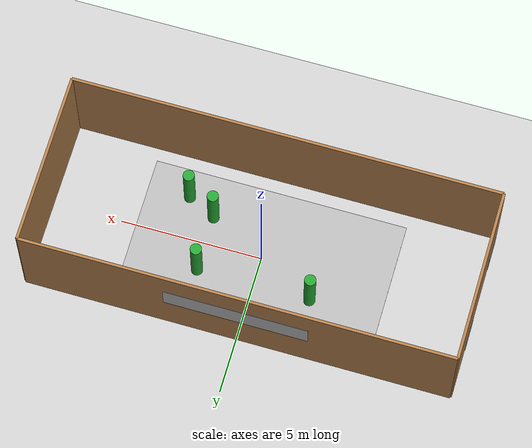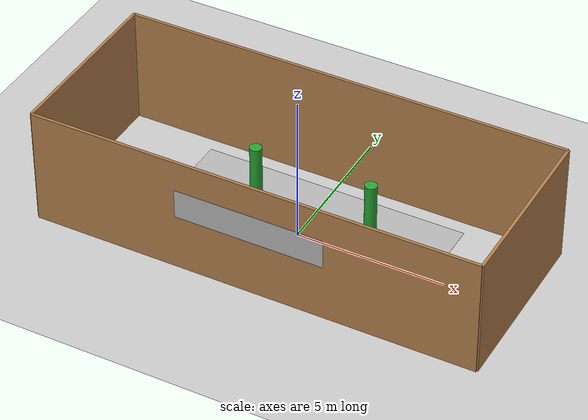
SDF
<?xml version="1.0" ?>
<sdf version="1.5">
  <world name="default">
   <light type="directional" name="sun">
      <cast_shadows>false</cast_shadows>
      <pose>0 0 100 0 0 0</pose>
      <diffuse>0.8 0.8 0.8 1</diffuse>
      <specular>0.9 0.9 0.9 1</specular>
      <attenuation>
        <range>1000</range>
        <constant>0.9</constant>
        <linear>0.01</linear>
        <quadratic>0.001</quadratic>
      </attenuation>
      <direction>0.2 0.2 -0.9</direction>
    </light>

    <!-- A ground plane -->
    <include>
      <uri>model://ground_plane</uri>
    </include>

    <!-- 初始视角 -->
    <gui fullscreen='0'>
      <camera name='user_camera'>
        <pose>-11.0 0.0 7.0 0 0.57 0.0</pose>
        <view_controller>orbit</view_controller>
      </camera>
    </gui>

    <!-- 地面 -->

    <physics type='ode'>
      <gravity>0 0 -9.8066</gravity>
      <ode>
        <solver>
          <type>quick</type>
          <iters>10</iters>
          <sor>1.3</sor>
          <use_dynamic_moi_rescaling>0</use_dynamic_moi_rescaling>
        </solver>
        <constraints>
          <cfm>0.0</cfm>
          <erp>0.2</erp>
          <contact_max_correcting_vel>100</contact_max_correcting_vel>
          <contact_surface_layer>0.001</contact_surface_layer>
        </constraints>
      </ode>
      <max_step_size>0.004</max_step_size>
      <real_time_factor>1.0</real_time_factor>
      <real_time_update_rate>250</real_time_update_rate>
      <magnetic_field>6.0e-6 2.3e-5 -4.2e-5</magnetic_field>
    </physics>

    <!-- 房间四周墙体 -->
    <!-- 房间大小粗略估计为 15米*6米*6米，但高度只取到4米（为了方便显示） -->
    <!-- 取VICON区域中心点为原点，大致的可探测区域为 [-4.5,4.5]米*[-2.5,2.5]米*[0,3.5]米 -->
    <model name='room_wall'>
      <static>true</static>
      <!-- 前墙 -->
      <link name="wall_front">
          <pose frame=''>7.5 0 2 0 -0 1.57</pose>
          <inertial>
            <mass>2.0</mass>
          </inertial>
          <collision name="collision">
            <geometry>
              <box>
                <size>6 0.1 4</size>
              </box>
            </geometry>
          </collision>
          <visual name="visual">
            <geometry>
              <box>
                <size>6 0.1 4</size>
              </box>
            </geometry>
            <material>
              <script>
                <uri>file://media/materials/scripts/gazebo.material</uri>
                <name>Gazebo/Wood</name>
              </script>
              <ambient>1 1 1 1</ambient>
            </material>
          </visual>
      </link>
      <!-- 后墙 -->
      <link name="wall_back">
          <pose frame=''>-7.5 0 2 0 -0 1.57</pose>
          <inertial>
            <mass>2.0</mass>
          </inertial>
          <collision name="collision">
            <geometry>
              <box>
                <size>6 0.1 4</size>
              </box>
            </geometry>
          </collision>
          <visual name="visual">
            <geometry>
              <box>
                <size>6 0.1 4</size>
              </box>
            </geometry>
            <material>
              <script>
                <uri>file://media/materials/scripts/gazebo.material</uri>
                <name>Gazebo/Wood</name>
              </script>
              <ambient>1 1 1 1</ambient>
            </material>
          </visual>
      </link>
      <!-- 右墙 -->
      <link name="wall_right">
          <pose frame=''>-0 -3 2 0 -0 0</pose>
          <inertial>
            <mass>2.0</mass>
          </inertial>
          <collision name="collision">
            <geometry>
              <box>
                <size>15 0.1 4</size>
              </box>
            </geometry>
          </collision>
          <visual name="visual">
            <geometry>
              <box>
                <size>15 0.1 4</size>
              </box>
            </geometry>
            <material>
              <script>
                <uri>file://media/materials/scripts/gazebo.material</uri>
                <name>Gazebo/Wood</name>
              </script>
              <ambient>1 1 1 1</ambient>
            </material>
          </visual>
      </link>
      <!-- 左墙 -->
      <link name="wall_left">
          <pose frame=''>-0 3 2 0 -0 0</pose>
          <inertial>
            <mass>2.0</mass>
          </inertial>
          <collision name="collision">
            <geometry>
              <box>
                <size>15 0.1 4</size>
              </box>
            </geometry>
          </collision>
          <visual name="visual">
            <geometry>
              <box>
                <size>15 0.1 4</size>
              </box>
            </geometry>
            <material>
              <script>
                <uri>file://media/materials/scripts/gazebo.material</uri>
                <name>Gazebo/Wood</name>
              </script>
              <ambient>1 1 1 1</ambient>
            </material>
          </visual>
      </link>
    </model>

  <!-- 装饰 -->

    <!-- 装饰 -->
    <model name='texture'>
      <static>true</static>
      <!-- 地板 -->
      <link name="ground">
        <pose>0 0 -0.01 0 0 1.57</pose>
        <visual name="visual">
          <cast_shadows>false</cast_shadows>
          <geometry>
            <box>
              <size>5 9.0 0.01</size>
            </box>
          </geometry>
          <material>
            <script>
              <uri>model://texture_CXY/texture.material</uri>
              <name>ground</name>
            </script>
          </material>
        </visual>
      </link>
      <!-- 后墙徽章 -->
      <link name="sysu_logo">
        <pose>-7.6 1.5 2.5 0 1.57 0</pose>
        <visual name="visual">
          <cast_shadows>false</cast_shadows>
          <geometry>
            <box>
              <size>1.0 1.0 0.01</size>
            </box>
          </geometry>
          <material>
            <script>
              <uri>model://texture_CXY/texture.material</uri>
              <name>sysu_logo</name>
            </script>
          </material>
        </visual>
      </link>
      <!-- 前墙海报 -->
      <link name="jky_logo">
        <pose>-7.6 -1.5 2.5 0 1.57 0</pose>
        <visual name="visual">
          <cast_shadows>false</cast_shadows>
          <geometry>
            <box>
              <size>1.0 1.0 0.01</size>
            </box>
          </geometry>
          <material>
            <script>
              <uri>model://texture_CXY/texture.material</uri>
              <name>jky_logo</name>
            </script>
          </material>
        </visual>
      </link>

      <!-- 左墙海报 -->
      <link name="jky_word">
        <pose>-0.0 -3.11 2.5 0 1.57 1.57</pose>
        <visual name="visual">
          <cast_shadows>false</cast_shadows>
          <geometry>
            <box>
              <size>1.0 5.0 0.01</size>
            </box>
          </geometry>
          <material>
            <script>
              <uri>model://texture_CXY/texture.material</uri>
              <name>cxy</name>
            </script>
          </material>
        </visual>
      </link>

      <!--　右墙海报 -->
      <link name="sysu_word">
        <pose>0 3.11 2.5 3.14 1.57 1.57</pose>
        <visual name="visual">
          <cast_shadows>false</cast_shadows>
          <geometry>
            <box>
              <size>1.0 5.0 0.01</size>
            </box>
          </geometry>
          <material>
            <script>
              <uri>model://texture_CXY/texture.material</uri>
              <name>xty</name>
            </script>
          </material>
        </visual>
      </link>
    </model>

    <!-- 柱子障碍物 -->
    <model name='obstacle'>
      <static>true</static>
      <link name='pillar_1'>
        <pose frame=''>2.0 1.0 1.0 0 -0 0</pose>
        <visual name='visual'>
          <geometry>
            <cylinder>
              <radius>0.2</radius>
              <length>2.0</length>
            </cylinder>
          </geometry>
          <material>
            <script>
              <uri>file://media/materials/scripts/gazebo.material</uri>
              <name>Gazebo/Green</name>
            </script>
          </material>
        </visual>
        <collision name='collision'>
          <geometry>
            <cylinder>
              <radius>0.2</radius>
              <length>2.0</length>
            </cylinder>
          </geometry>
        </collision>
      </link>
      <link name='pillar_2'>
        <pose frame=''>-2.0 1.0 1.0 0 -0 0</pose>
        <visual name='visual'>
          <geometry>
            <cylinder>
              <radius>0.2</radius>
              <length>2.0</length>
            </cylinder>
          </geometry>
          <material>
            <script>
              <uri>file://media/materials/scripts/gazebo.material</uri>
              <name>Gazebo/Green</name>
            </script>
          </material>
        </visual>
        <collision name='collision'>
          <geometry>
            <cylinder>
              <radius>0.2</radius>
              <length>2.0</length>
            </cylinder>
          </geometry>
        </collision>
      </link>
      <link name='pillar_3'>
        <pose frame=''>2.0 -1.0 1.0 0 -0 0</pose>
        <visual name='visual'>
          <geometry>
            <cylinder>
              <radius>0.2</radius>
              <length>2.0</length>
            </cylinder>
          </geometry>
          <material>
            <script>
              <uri>file://media/materials/scripts/gazebo.material</uri>
              <name>Gazebo/Green</name>
            </script>
          </material>
        </visual>
        <collision name='collision'>
          <geometry>
            <cylinder>
              <radius>0.2</radius>
              <length>2.0</length>
            </cylinder>
          </geometry>
        </collision>
      </link>
      <link name='pillar_4'>
        <pose frame=''>3.0 -1.5 1.0 0 -0 0</pose>
        <visual name='visual'>
          <geometry>
            <cylinder>
              <radius>0.2</radius>
              <length>2.0</length>
            </cylinder>
          </geometry>
          <material>
            <script>
              <uri>file://media/materials/scripts/gazebo.material</uri>
              <name>Gazebo/Green</name>
            </script>
          </material>
        </visual>
        <collision name='collision'>
          <geometry>
            <cylinder>
              <radius>0.2</radius>
              <length>2.0</length>
            </cylinder>
          </geometry>
        </collision>
      </link>
    </model>

    <!-- 待检测目标 -->

    </world>
</sdf>
